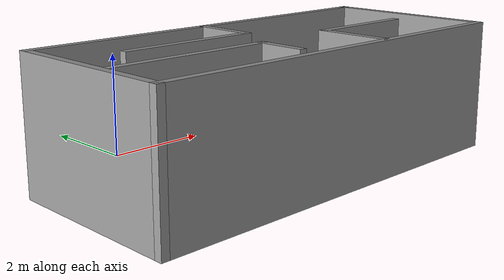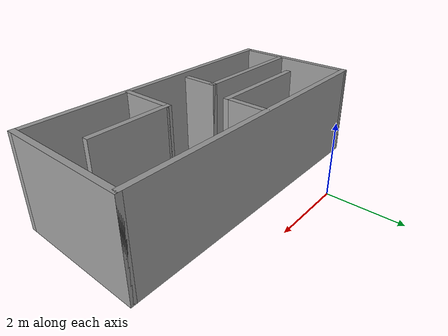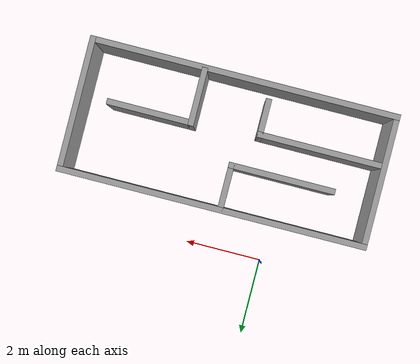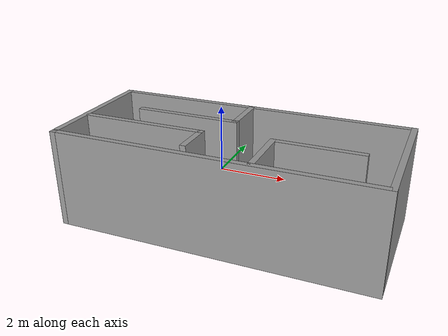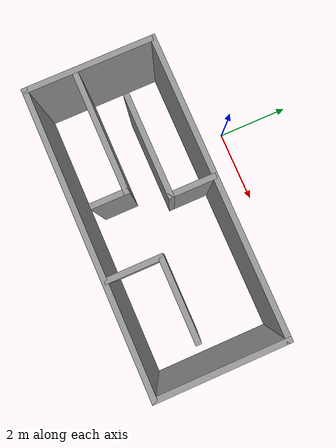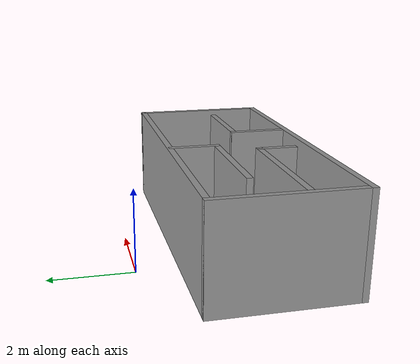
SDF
<?xml version='1.0'?>
<sdf version='1.7'>
  <model name='room1'>
    <pose>1.565 -2.2425 0 0 -0 0</pose>
    <link name='Wall_0'>
      <collision name='Wall_0_Collision'>
        <geometry>
          <box>
            <size>8 0.15 2.5</size>
          </box>
        </geometry>
        <pose>0 0 1.25 0 -0 0</pose>
      </collision>
      <visual name='Wall_0_Visual'>
        <pose>0 0 1.25 0 -0 0</pose>
        <geometry>
          <box>
            <size>8 0.15 2.5</size>
          </box>
        </geometry>
        <material>
          <script>
            <uri>file://media/materials/scripts/gazebo.material</uri>
            <name>Gazebo/Grey</name>
          </script>
          <ambient>1 1 1 1</ambient>
        </material>
        <meta>
          <layer>0</layer>
        </meta>
      </visual>
      <pose>0 1.1825 0 0 -0 0</pose>
    </link>
    <link name='Wall_1'>
      <collision name='Wall_1_Collision'>
        <geometry>
          <box>
            <size>3.5 0.15 2.5</size>
          </box>
        </geometry>
        <pose>0 0 1.25 0 -0 0</pose>
      </collision>
      <visual name='Wall_1_Visual'>
        <pose>0 0 1.25 0 -0 0</pose>
        <geometry>
          <box>
            <size>3.5 0.15 2.5</size>
          </box>
        </geometry>
        <material>
          <script>
            <uri>file://media/materials/scripts/gazebo.material</uri>
            <name>Gazebo/Grey</name>
          </script>
          <ambient>1 1 1 1</ambient>
        </material>
        <meta>
          <layer>0</layer>
        </meta>
      </visual>
      <pose>3.925 -0.4925 0 0 -0 -1.5708</pose>
    </link>
    <link name='Wall_11'>
      <collision name='Wall_11_Collision'>
        <geometry>
          <box>
            <size>1.5 0.15 2.5</size>
          </box>
        </geometry>
        <pose>0 0 1.25 0 -0 0</pose>
      </collision>
      <visual name='Wall_11_Visual'>
        <pose>0 0 1.25 0 -0 0</pose>
        <geometry>
          <box>
            <size>1.5 0.15 2.5</size>
          </box>
        </geometry>
        <material>
          <script>
            <uri>file://media/materials/scripts/gazebo.material</uri>
            <name>Gazebo/Grey</name>
          </script>
          <ambient>1 1 1 1</ambient>
        </material>
        <meta>
          <layer>0</layer>
        </meta>
      </visual>
      <pose>1.025 -1.4225 0 0 -0 1.5708</pose>
    </link>
    <link name='Wall_12'>
      <collision name='Wall_12_Collision'>
        <geometry>
          <box>
            <size>2.25 0.15 2.5</size>
          </box>
        </geometry>
        <pose>0 0 1.25 0 -0 0</pose>
      </collision>
      <visual name='Wall_12_Visual'>
        <pose>0 0 1.25 0 -0 0</pose>
        <geometry>
          <box>
            <size>2.25 0.15 2.5</size>
          </box>
        </geometry>
        <material>
          <script>
            <uri>file://media/materials/scripts/gazebo.material</uri>
            <name>Gazebo/Grey</name>
          </script>
          <ambient>1 1 1 1</ambient>
        </material>
        <meta>
          <layer>0</layer>
        </meta>
      </visual>
      <pose>2.075 -0.7475 0 0 -0 0</pose>
    </link>
    <link name='Wall_14'>
      <collision name='Wall_14_Collision'>
        <geometry>
          <box>
            <size>2.75 0.15 2.5</size>
          </box>
        </geometry>
        <pose>0 0 1.25 0 -0 0</pose>
      </collision>
      <visual name='Wall_14_Visual'>
        <pose>0 0 1.25 0 -0 0</pose>
        <geometry>
          <box>
            <size>2.75 0.15 2.5</size>
          </box>
        </geometry>
        <material>
          <script>
            <uri>file://media/materials/scripts/gazebo.material</uri>
            <name>Gazebo/Grey</name>
          </script>
          <ambient>1 1 1 1</ambient>
        </material>
        <meta>
          <layer>0</layer>
        </meta>
      </visual>
      <pose>-1.515 0.0325 0 0 -0 3.14159</pose>
    </link>
    <link name='Wall_2'>
      <collision name='Wall_2_Collision'>
        <geometry>
          <box>
            <size>8 0.15 2.5</size>
          </box>
        </geometry>
        <pose>0 0 1.25 0 -0 0</pose>
      </collision>
      <visual name='Wall_2_Visual'>
        <pose>0 0 1.25 0 -0 0</pose>
        <geometry>
          <box>
            <size>8 0.15 2.5</size>
          </box>
        </geometry>
        <material>
          <script>
            <uri>file://media/materials/scripts/gazebo.material</uri>
            <name>Gazebo/Grey</name>
          </script>
          <ambient>1 1 1 1</ambient>
        </material>
        <meta>
          <layer>0</layer>
        </meta>
      </visual>
      <pose>0 -2.1675 0 0 -0 3.14159</pose>
    </link>
    <link name='Wall_3'>
      <collision name='Wall_3_Collision'>
        <geometry>
          <box>
            <size>3.5 0.15 2.5</size>
          </box>
        </geometry>
        <pose>0 0 1.25 0 -0 0</pose>
      </collision>
      <visual name='Wall_3_Visual'>
        <pose>0 0 1.25 0 -0 0</pose>
        <geometry>
          <box>
            <size>3.5 0.15 2.5</size>
          </box>
        </geometry>
        <material>
          <script>
            <uri>file://media/materials/scripts/gazebo.material</uri>
            <name>Gazebo/Grey</name>
          </script>
          <ambient>1 1 1 1</ambient>
        </material>
        <meta>
          <layer>0</layer>
        </meta>
      </visual>
      <pose>-3.925 -0.4925 0 0 -0 1.5708</pose>
    </link>
    <link name='Wall_5'>
      <collision name='Wall_5_Collision'>
        <geometry>
          <box>
            <size>1.25 0.15 2.5</size>
          </box>
        </geometry>
        <pose>0 0 1.25 0 -0 0</pose>
      </collision>
      <visual name='Wall_5_Visual'>
        <pose>0 0 1.25 0 -0 0</pose>
        <geometry>
          <box>
            <size>1.25 0.15 2.5</size>
          </box>
        </geometry>
        <material>
          <script>
            <uri>file://media/materials/scripts/gazebo.material</uri>
            <name>Gazebo/Grey</name>
          </script>
          <ambient>1 1 1 1</ambient>
        </material>
        <meta>
          <layer>0</layer>
        </meta>
      </visual>
      <pose>-0.215 0.5825 0 0 -0 -1.5708</pose>
    </link>
    <link name='Wall_8'>
      <collision name='Wall_8_Collision'>
        <geometry>
          <box>
            <size>3.25 0.15 2.5</size>
          </box>
        </geometry>
        <pose>0 0 1.25 0 -0 0</pose>
      </collision>
      <visual name='Wall_8_Visual'>
        <pose>0 0 1.25 0 -0 0</pose>
        <geometry>
          <box>
            <size>3.25 0.15 2.5</size>
          </box>
        </geometry>
        <material>
          <script>
            <uri>file://media/materials/scripts/gazebo.material</uri>
            <name>Gazebo/Grey</name>
          </script>
          <ambient>1 1 1 1</ambient>
        </material>
        <meta>
          <layer>0</layer>
        </meta>
      </visual>
      <pose>-2.265 -0.8875 0 0 -0 0</pose>
    </link>
    <link name='Wall_9'>
      <collision name='Wall_9_Collision'>
        <geometry>
          <box>
            <size>1 0.15 2.5</size>
          </box>
        </geometry>
        <pose>0 0 1.25 0 -0 0</pose>
      </collision>
      <visual name='Wall_9_Visual'>
        <pose>0 0 1.25 0 -0 0</pose>
        <geometry>
          <box>
            <size>1 0.15 2.5</size>
          </box>
        </geometry>
        <material>
          <script>
            <uri>file://media/materials/scripts/gazebo.material</uri>
            <name>Gazebo/Grey</name>
          </script>
          <ambient>1 1 1 1</ambient>
        </material>
        <meta>
          <layer>0</layer>
        </meta>
      </visual>
      <pose>-0.715 -1.3125 0 0 -0 -1.5708</pose>
    </link>
    <static>1</static>
  </model>
</sdf>
